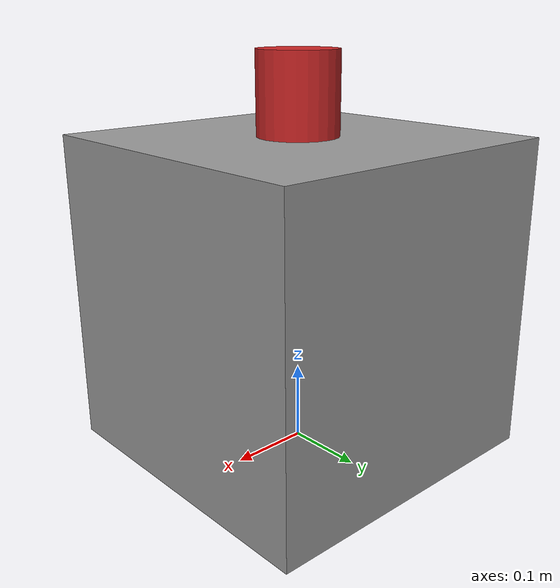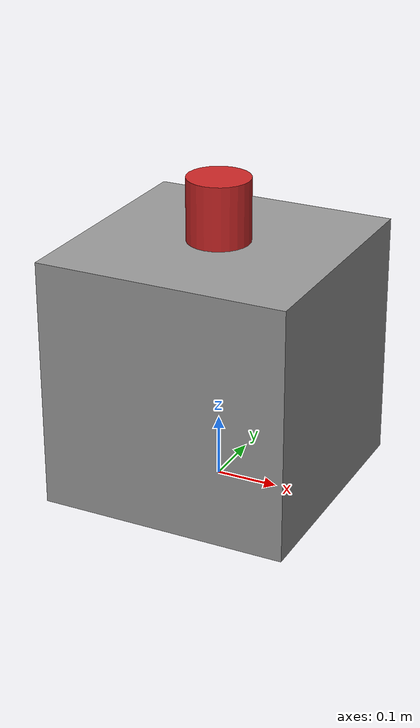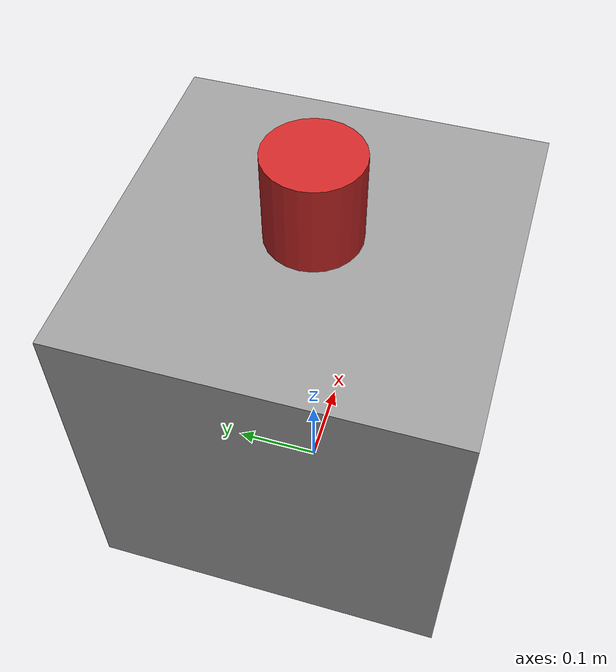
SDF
<?xml version='1.0'?>
<sdf version='1.7'>
  <model name='motor_with_cam'>
    <pose>0.0 0.0 0.2 0 -0 0</pose>
    <link name='motor_body'>
      <collision name='collision'>
        <geometry>
          <box>
            <size>0.4 0.4 0.4</size>
          </box>
        </geometry>
      </collision>
      <visual name='visual'>
        <geometry>
          <box>
            <size>0.4 0.4 0.4</size>
          </box>
        </geometry>
        <material>
          <script>
            <name>Gazebo/Grey</name>
            <uri>file://media/materials/scripts/gazebo.material</uri>
          </script>
        </material>
      </visual>
    </link>
    <link name='motor_shaft'>
      <pose>0 0 0.25 0 -0 0</pose>
      <collision name='collision'>
        <geometry>
          <cylinder>
            <radius>0.05</radius>
            <length>0.1</length>
          </cylinder>
        </geometry>
      </collision>
      <visual name='visual'>
        <geometry>
          <cylinder>
            <radius>0.05</radius>
            <length>0.1</length>
          </cylinder>
        </geometry>
        <material>
          <script>
            <name>Gazebo/Red</name>
            <uri>file://media/materials/scripts/gazebo.material</uri>
          </script>
        </material>
      </visual>
    </link>
    <joint name="motor_shaft_joint" type="revolute">
      <pose>0 0 0 0 0 0</pose>
      <child>motor_shaft</child>
      <parent>motor_body</parent>
      <axis>
        <xyz>0 0 1</xyz>
      </axis>
    </joint>
    <static>1</static>
    <allow_auto_disable>1</allow_auto_disable>
    <!-- Attach the plugin to this model -->
    <plugin name="simple_motors" filename="libgazebo_ros_simple_motors.so"/>
  </model>
</sdf>
